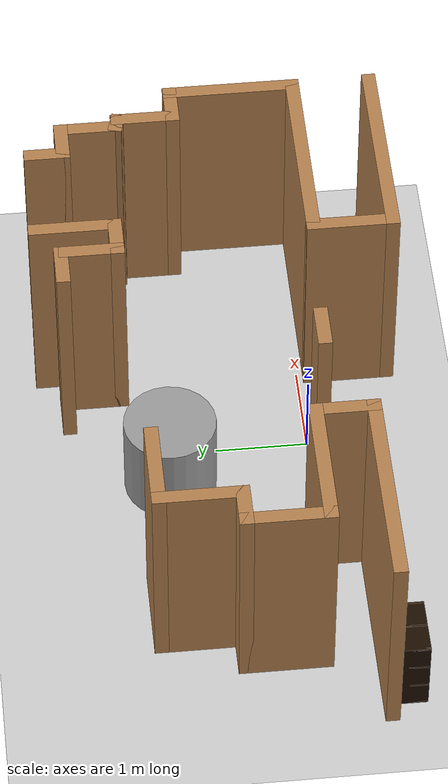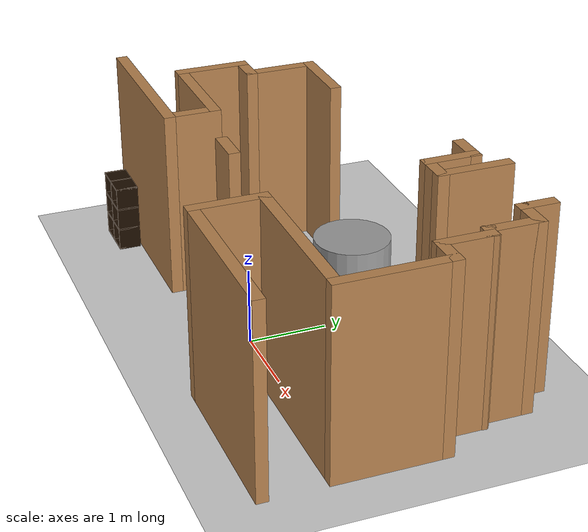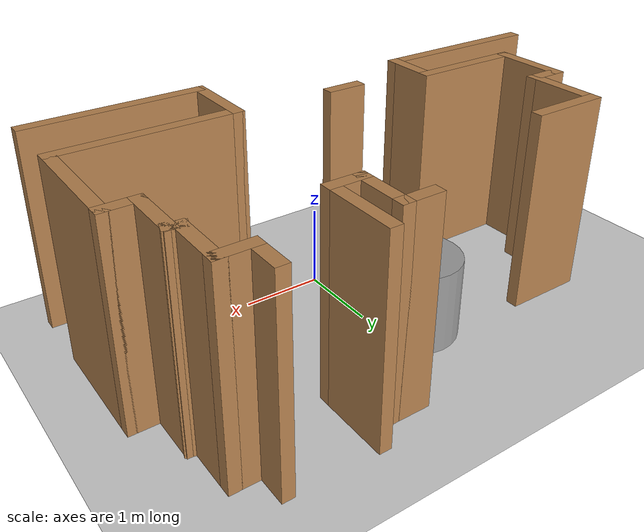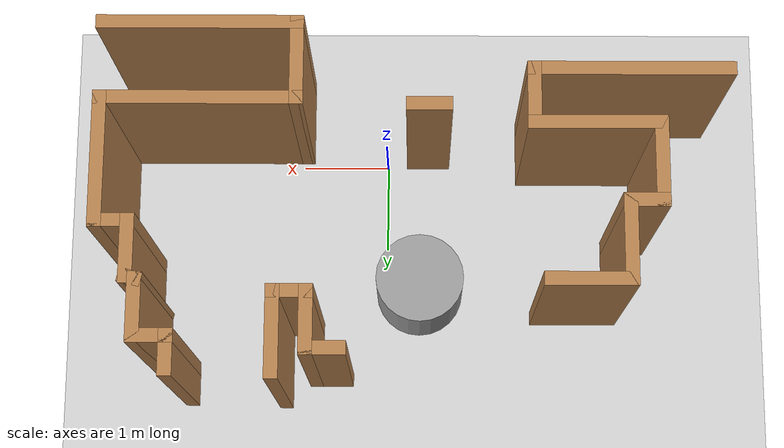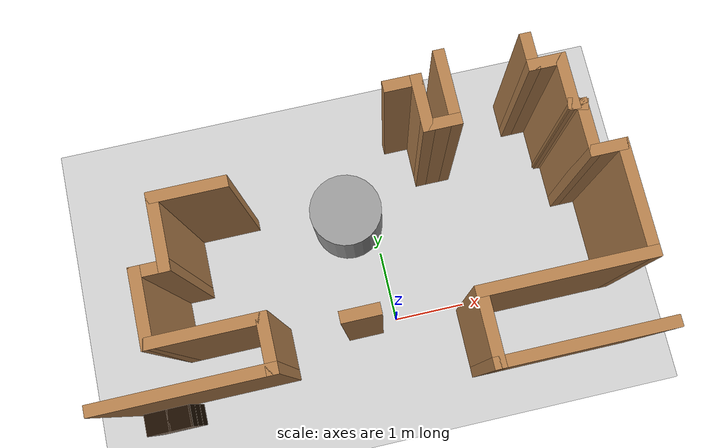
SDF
<sdf version="1.6">
 <world name="default">
  <model name="ground_plane">
   <static>1</static>
   <link name="link">
    <collision name="collision">
     <geometry><plane><normal>0 0 1</normal><size>100 100</size></plane></geometry>
     <surface><friction><ode><mu>100</mu><mu2>50</mu2></ode></friction></surface>
    </collision>
    <visual name="visual">
     <cast_shadows>0</cast_shadows>
     <geometry><plane><normal>0 0 1</normal><size>100 100</size></plane></geometry>
     <material>
      <script><uri>file://media/materials/scripts/gazebo.material</uri><name>Gazebo/Grey</name></script>
     </material>
    </visual>
   </link>
  </model>
  <model name="map_42">
   <link name="Wall_10">
    <pose>-2.325 2.05969 0 0 -0 3.14159</pose>
    <visual name="Wall_10_Visual">
     <pose>0 0 1.25 0 -0 0</pose>
     <geometry><box><size>0.5 0.15 2.5</size></box></geometry>
     <material>
      <script><uri>file://media/materials/scripts/gazebo.material</uri><name>Gazebo/Wood</name></script>
      <ambient>1 1 1 1</ambient>
      <shader type="pixel"/>
     </material>
     <meta><layer>0</layer></meta>
    </visual>
    <collision name="Wall_10_Collision">
     <pose>0 0 1.25 0 -0 0</pose>
     <geometry><box><size>0.5 0.15 2.5</size></box></geometry>
     <surface>
      <friction>
       <ode><mu>1</mu><mu2>1</mu2><fdir1>0 0 0</fdir1><slip1>0</slip1><slip2>0</slip2></ode>
       <torsional>
        <coefficient>1</coefficient>
        <patch_radius>0</patch_radius>
        <surface_radius>0</surface_radius>
        <use_patch_radius>1</use_patch_radius>
        <ode><slip>0</slip></ode>
       </torsional>
      </friction>
      <bounce><restitution_coefficient>0</restitution_coefficient><threshold>1e+06</threshold></bounce>
      <contact>
       <collide_without_contact>0</collide_without_contact>
       <collide_without_contact_bitmask>1</collide_without_contact_bitmask>
       <collide_bitmask>1</collide_bitmask>
       <ode>
        <soft_cfm>0</soft_cfm>
        <soft_erp>0.2</soft_erp>
        <kp>1e+13</kp>
        <kd>1</kd>
        <max_vel>0.01</max_vel>
        <min_depth>0</min_depth>
       </ode>
       <bullet>
        <split_impulse>1</split_impulse>
        <split_impulse_penetration_threshold>-0.01</split_impulse_penetration_threshold>
        <soft_cfm>0</soft_cfm>
        <soft_erp>0.2</soft_erp>
        <kp>1e+13</kp>
        <kd>1</kd>
       </bullet>
      </contact>
     </surface>
    </collision>
   </link>
   <link name="Wall_100">
    <pose>1.26623 3.34952 0 0 -0 1.5708</pose>
    <visual name="Wall_100_Visual">
     <pose>0 0 1.25 0 -0 0</pose>
     <geometry><box><size>0.75 0.15 2.5</size></box></geometry>
     <material>
      <script><uri>file://media/materials/scripts/gazebo.material</uri><name>Gazebo/Wood</name></script>
      <ambient>1 1 1 1</ambient>
      <shader type="pixel"/>
     </material>
     <meta><layer>0</layer></meta>
    </visual>
    <collision name="Wall_100_Collision">
     <pose>0 0 1.25 0 -0 0</pose>
     <geometry><box><size>0.75 0.15 2.5</size></box></geometry>
     <surface>
      <friction>
       <ode><mu>1</mu><mu2>1</mu2><fdir1>0 0 0</fdir1><slip1>0</slip1><slip2>0</slip2></ode>
       <torsional>
        <coefficient>1</coefficient>
        <patch_radius>0</patch_radius>
        <surface_radius>0</surface_radius>
        <use_patch_radius>1</use_patch_radius>
        <ode><slip>0</slip></ode>
       </torsional>
      </friction>
      <bounce><restitution_coefficient>0</restitution_coefficient><threshold>1e+06</threshold></bounce>
      <contact>
       <collide_without_contact>0</collide_without_contact>
       <collide_without_contact_bitmask>1</collide_without_contact_bitmask>
       <collide_bitmask>1</collide_bitmask>
       <ode>
        <soft_cfm>0</soft_cfm>
        <soft_erp>0.2</soft_erp>
        <kp>1e+13</kp>
        <kd>1</kd>
        <max_vel>0.01</max_vel>
        <min_depth>0</min_depth>
       </ode>
       <bullet>
        <split_impulse>1</split_impulse>
        <split_impulse_penetration_threshold>-0.01</split_impulse_penetration_threshold>
        <soft_cfm>0</soft_cfm>
        <soft_erp>0.2</soft_erp>
        <kp>1e+13</kp>
        <kd>1</kd>
       </bullet>
      </contact>
     </surface>
    </collision>
   </link>
   <link name="Wall_101">
    <pose>1.09123 3.64952 0 0 -0 3.14159</pose>
    <visual name="Wall_101_Visual">
     <pose>0 0 1.25 0 -0 0</pose>
     <geometry><box><size>0.5 0.15 2.5</size></box></geometry>
     <material>
      <script><uri>file://media/materials/scripts/gazebo.material</uri><name>Gazebo/Wood</name></script>
      <ambient>1 1 1 1</ambient>
      <shader type="pixel"/>
     </material>
     <meta><layer>0</layer></meta>
    </visual>
    <collision name="Wall_101_Collision">
     <pose>0 0 1.25 0 -0 0</pose>
     <geometry><box><size>0.5 0.15 2.5</size></box></geometry>
     <surface>
      <friction>
       <ode><mu>1</mu><mu2>1</mu2><fdir1>0 0 0</fdir1><slip1>0</slip1><slip2>0</slip2></ode>
       <torsional>
        <coefficient>1</coefficient>
        <patch_radius>0</patch_radius>
        <surface_radius>0</surface_radius>
        <use_patch_radius>1</use_patch_radius>
        <ode><slip>0</slip></ode>
       </torsional>
      </friction>
      <bounce><restitution_coefficient>0</restitution_coefficient><threshold>1e+06</threshold></bounce>
      <contact>
       <collide_without_contact>0</collide_without_contact>
       <collide_without_contact_bitmask>1</collide_without_contact_bitmask>
       <collide_bitmask>1</collide_bitmask>
       <ode>
        <soft_cfm>0</soft_cfm>
        <soft_erp>0.2</soft_erp>
        <kp>1e+13</kp>
        <kd>1</kd>
        <max_vel>0.01</max_vel>
        <min_depth>0</min_depth>
       </ode>
       <bullet>
        <split_impulse>1</split_impulse>
        <split_impulse_penetration_threshold>-0.01</split_impulse_penetration_threshold>
        <soft_cfm>0</soft_cfm>
        <soft_erp>0.2</soft_erp>
        <kp>1e+13</kp>
        <kd>1</kd>
       </bullet>
      </contact>
     </surface>
    </collision>
   </link>
   <link name="Wall_11">
    <pose>-2.5 1.63469 0 0 0 -1.5708</pose>
    <visual name="Wall_11_Visual">
     <pose>0 0 1.25 0 -0 0</pose>
     <geometry><box><size>1 0.15 2.5</size></box></geometry>
     <material>
      <script><uri>file://media/materials/scripts/gazebo.material</uri><name>Gazebo/Wood</name></script>
      <ambient>1 1 1 1</ambient>
      <shader type="pixel"/>
     </material>
     <meta><layer>0</layer></meta>
    </visual>
    <collision name="Wall_11_Collision">
     <pose>0 0 1.25 0 -0 0</pose>
     <geometry><box><size>1 0.15 2.5</size></box></geometry>
     <surface>
      <friction>
       <ode><mu>1</mu><mu2>1</mu2><fdir1>0 0 0</fdir1><slip1>0</slip1><slip2>0</slip2></ode>
       <torsional>
        <coefficient>1</coefficient>
        <patch_radius>0</patch_radius>
        <surface_radius>0</surface_radius>
        <use_patch_radius>1</use_patch_radius>
        <ode><slip>0</slip></ode>
       </torsional>
      </friction>
      <bounce><restitution_coefficient>0</restitution_coefficient><threshold>1e+06</threshold></bounce>
      <contact>
       <collide_without_contact>0</collide_without_contact>
       <collide_without_contact_bitmask>1</collide_without_contact_bitmask>
       <collide_bitmask>1</collide_bitmask>
       <ode>
        <soft_cfm>0</soft_cfm>
        <soft_erp>0.2</soft_erp>
        <kp>1e+13</kp>
        <kd>1</kd>
        <max_vel>0.01</max_vel>
        <min_depth>0</min_depth>
       </ode>
       <bullet>
        <split_impulse>1</split_impulse>
        <split_impulse_penetration_threshold>-0.01</split_impulse_penetration_threshold>
        <soft_cfm>0</soft_cfm>
        <soft_erp>0.2</soft_erp>
        <kp>1e+13</kp>
        <kd>1</kd>
       </bullet>
      </contact>
     </surface>
    </collision>
   </link>
   <link name="Wall_14">
    <pose>-1.825 1.20969 0 0 -0 0</pose>
    <visual name="Wall_14_Visual">
     <pose>0 0 1.25 0 -0 0</pose>
     <geometry><box><size>1.5 0.15 2.5</size></box></geometry>
     <material>
      <script><uri>file://media/materials/scripts/gazebo.material</uri><name>Gazebo/Wood</name></script>
      <ambient>1 1 1 1</ambient>
      <shader type="pixel"/>
     </material>
     <meta><layer>0</layer></meta>
    </visual>
    <collision name="Wall_14_Collision">
     <pose>0 0 1.25 0 -0 0</pose>
     <geometry><box><size>1.5 0.15 2.5</size></box></geometry>
     <surface>
      <friction>
       <ode><mu>1</mu><mu2>1</mu2><fdir1>0 0 0</fdir1><slip1>0</slip1><slip2>0</slip2></ode>
       <torsional>
        <coefficient>1</coefficient>
        <patch_radius>0</patch_radius>
        <surface_radius>0</surface_radius>
        <use_patch_radius>1</use_patch_radius>
        <ode><slip>0</slip></ode>
       </torsional>
      </friction>
      <bounce><restitution_coefficient>0</restitution_coefficient><threshold>1e+06</threshold></bounce>
      <contact>
       <collide_without_contact>0</collide_without_contact>
       <collide_without_contact_bitmask>1</collide_without_contact_bitmask>
       <collide_bitmask>1</collide_bitmask>
       <ode>
        <soft_cfm>0</soft_cfm>
        <soft_erp>0.2</soft_erp>
        <kp>1e+13</kp>
        <kd>1</kd>
        <max_vel>0.01</max_vel>
        <min_depth>0</min_depth>
       </ode>
       <bullet>
        <split_impulse>1</split_impulse>
        <split_impulse_penetration_threshold>-0.01</split_impulse_penetration_threshold>
        <soft_cfm>0</soft_cfm>
        <soft_erp>0.2</soft_erp>
        <kp>1e+13</kp>
        <kd>1</kd>
       </bullet>
      </contact>
     </surface>
    </collision>
   </link>
   <link name="Wall_15">
    <pose>-1.15 0.909687 0 0 0 -1.5708</pose>
    <visual name="Wall_15_Visual">
     <pose>0 0 1.25 0 -0 0</pose>
     <geometry><box><size>0.75 0.15 2.5</size></box></geometry>
     <material>
      <script><uri>file://media/materials/scripts/gazebo.material</uri><name>Gazebo/Wood</name></script>
      <ambient>1 1 1 1</ambient>
      <shader type="pixel"/>
     </material>
     <meta><layer>0</layer></meta>
    </visual>
    <collision name="Wall_15_Collision">
     <pose>0 0 1.25 0 -0 0</pose>
     <geometry><box><size>0.75 0.15 2.5</size></box></geometry>
     <surface>
      <friction>
       <ode><mu>1</mu><mu2>1</mu2><fdir1>0 0 0</fdir1><slip1>0</slip1><slip2>0</slip2></ode>
       <torsional>
        <coefficient>1</coefficient>
        <patch_radius>0</patch_radius>
        <surface_radius>0</surface_radius>
        <use_patch_radius>1</use_patch_radius>
        <ode><slip>0</slip></ode>
       </torsional>
      </friction>
      <bounce><restitution_coefficient>0</restitution_coefficient><threshold>1e+06</threshold></bounce>
      <contact>
       <collide_without_contact>0</collide_without_contact>
       <collide_without_contact_bitmask>1</collide_without_contact_bitmask>
       <collide_bitmask>1</collide_bitmask>
       <ode>
        <soft_cfm>0</soft_cfm>
        <soft_erp>0.2</soft_erp>
        <kp>1e+13</kp>
        <kd>1</kd>
        <max_vel>0.01</max_vel>
        <min_depth>0</min_depth>
       </ode>
       <bullet>
        <split_impulse>1</split_impulse>
        <split_impulse_penetration_threshold>-0.01</split_impulse_penetration_threshold>
        <soft_cfm>0</soft_cfm>
        <soft_erp>0.2</soft_erp>
        <kp>1e+13</kp>
        <kd>1</kd>
       </bullet>
      </contact>
     </surface>
    </collision>
   </link>
   <link name="Wall_16">
    <pose>-2.2 0.609687 0 0 -0 3.14159</pose>
    <visual name="Wall_16_Visual">
     <pose>0 0 1.25 0 -0 0</pose>
     <geometry><box><size>2.25 0.15 2.5</size></box></geometry>
     <material>
      <script><uri>file://media/materials/scripts/gazebo.material</uri><name>Gazebo/Wood</name></script>
      <ambient>1 1 1 1</ambient>
      <shader type="pixel"/>
     </material>
     <meta><layer>0</layer></meta>
    </visual>
    <collision name="Wall_16_Collision">
     <pose>0 0 1.25 0 -0 0</pose>
     <geometry><box><size>2.25 0.15 2.5</size></box></geometry>
     <surface>
      <friction>
       <ode><mu>1</mu><mu2>1</mu2><fdir1>0 0 0</fdir1><slip1>0</slip1><slip2>0</slip2></ode>
       <torsional>
        <coefficient>1</coefficient>
        <patch_radius>0</patch_radius>
        <surface_radius>0</surface_radius>
        <use_patch_radius>1</use_patch_radius>
        <ode><slip>0</slip></ode>
       </torsional>
      </friction>
      <bounce><restitution_coefficient>0</restitution_coefficient><threshold>1e+06</threshold></bounce>
      <contact>
       <collide_without_contact>0</collide_without_contact>
       <collide_without_contact_bitmask>1</collide_without_contact_bitmask>
       <collide_bitmask>1</collide_bitmask>
       <ode>
        <soft_cfm>0</soft_cfm>
        <soft_erp>0.2</soft_erp>
        <kp>1e+13</kp>
        <kd>1</kd>
        <max_vel>0.01</max_vel>
        <min_depth>0</min_depth>
       </ode>
       <bullet>
        <split_impulse>1</split_impulse>
        <split_impulse_penetration_threshold>-0.01</split_impulse_penetration_threshold>
        <soft_cfm>0</soft_cfm>
        <soft_erp>0.2</soft_erp>
        <kp>1e+13</kp>
        <kd>1</kd>
       </bullet>
      </contact>
     </surface>
    </collision>
   </link>
   <link name="Wall_51">
    <pose>-0.025 1.00969 0 0 -0 0</pose>
    <visual name="Wall_51_Visual">
     <pose>0 0 1.25 0 -0 0</pose>
     <geometry><box><size>0.5 0.15 2.5</size></box></geometry>
     <material>
      <script><uri>file://media/materials/scripts/gazebo.material</uri><name>Gazebo/Wood</name></script>
      <ambient>1 1 1 1</ambient>
      <shader type="pixel"/>
     </material>
     <meta><layer>0</layer></meta>
    </visual>
    <collision name="Wall_51_Collision">
     <pose>0 0 1.25 0 -0 0</pose>
     <geometry><box><size>0.5 0.15 2.5</size></box></geometry>
     <surface>
      <friction>
       <ode><mu>1</mu><mu2>1</mu2><fdir1>0 0 0</fdir1><slip1>0</slip1><slip2>0</slip2></ode>
       <torsional>
        <coefficient>1</coefficient>
        <patch_radius>0</patch_radius>
        <surface_radius>0</surface_radius>
        <use_patch_radius>1</use_patch_radius>
        <ode><slip>0</slip></ode>
       </torsional>
      </friction>
      <bounce><restitution_coefficient>0</restitution_coefficient><threshold>1e+06</threshold></bounce>
      <contact>
       <collide_without_contact>0</collide_without_contact>
       <collide_without_contact_bitmask>1</collide_without_contact_bitmask>
       <collide_bitmask>1</collide_bitmask>
       <ode>
        <soft_cfm>0</soft_cfm>
        <soft_erp>0.2</soft_erp>
        <kp>1e+13</kp>
        <kd>1</kd>
        <max_vel>0.01</max_vel>
        <min_depth>0</min_depth>
       </ode>
       <bullet>
        <split_impulse>1</split_impulse>
        <split_impulse_penetration_threshold>-0.01</split_impulse_penetration_threshold>
        <soft_cfm>0</soft_cfm>
        <soft_erp>0.2</soft_erp>
        <kp>1e+13</kp>
        <kd>1</kd>
       </bullet>
      </contact>
     </surface>
    </collision>
   </link>
   <link name="Wall_79">
    <pose>2.45941 0.097761 0 0 -0 3.14159</pose>
    <visual name="Wall_79_Visual">
     <pose>0 0 1.25 0 -0 0</pose>
     <geometry><box><size>2.25 0.15 2.5</size></box></geometry>
     <material>
      <script><uri>file://media/materials/scripts/gazebo.material</uri><name>Gazebo/Wood</name></script>
      <ambient>1 1 1 1</ambient>
      <shader type="pixel"/>
     </material>
     <meta><layer>0</layer></meta>
    </visual>
    <collision name="Wall_79_Collision">
     <pose>0 0 1.25 0 -0 0</pose>
     <geometry><box><size>2.25 0.15 2.5</size></box></geometry>
     <surface>
      <friction>
       <ode><mu>1</mu><mu2>1</mu2><fdir1>0 0 0</fdir1><slip1>0</slip1><slip2>0</slip2></ode>
       <torsional>
        <coefficient>1</coefficient>
        <patch_radius>0</patch_radius>
        <surface_radius>0</surface_radius>
        <use_patch_radius>1</use_patch_radius>
        <ode><slip>0</slip></ode>
       </torsional>
      </friction>
      <bounce><restitution_coefficient>0</restitution_coefficient><threshold>1e+06</threshold></bounce>
      <contact>
       <collide_without_contact>0</collide_without_contact>
       <collide_without_contact_bitmask>1</collide_without_contact_bitmask>
       <collide_bitmask>1</collide_bitmask>
       <ode>
        <soft_cfm>0</soft_cfm>
        <soft_erp>0.2</soft_erp>
        <kp>1e+13</kp>
        <kd>1</kd>
        <max_vel>0.01</max_vel>
        <min_depth>0</min_depth>
       </ode>
       <bullet>
        <split_impulse>1</split_impulse>
        <split_impulse_penetration_threshold>-0.01</split_impulse_penetration_threshold>
        <soft_cfm>0</soft_cfm>
        <soft_erp>0.2</soft_erp>
        <kp>1e+13</kp>
        <kd>1</kd>
       </bullet>
      </contact>
     </surface>
    </collision>
   </link>
   <link name="Wall_8">
    <pose>-1.725 2.90969 0 0 -0 3.14159</pose>
    <visual name="Wall_8_Visual">
     <pose>0 0 1.25 0 -0 0</pose>
     <geometry><box><size>1 0.15 2.5</size></box></geometry>
     <material>
      <script><uri>file://media/materials/scripts/gazebo.material</uri><name>Gazebo/Wood</name></script>
      <ambient>1 1 1 1</ambient>
      <shader type="pixel"/>
     </material>
     <meta><layer>0</layer></meta>
    </visual>
    <collision name="Wall_8_Collision">
     <pose>0 0 1.25 0 -0 0</pose>
     <geometry><box><size>1 0.15 2.5</size></box></geometry>
     <surface>
      <friction>
       <ode><mu>1</mu><mu2>1</mu2><fdir1>0 0 0</fdir1><slip1>0</slip1><slip2>0</slip2></ode>
       <torsional>
        <coefficient>1</coefficient>
        <patch_radius>0</patch_radius>
        <surface_radius>0</surface_radius>
        <use_patch_radius>1</use_patch_radius>
        <ode><slip>0</slip></ode>
       </torsional>
      </friction>
      <bounce><restitution_coefficient>0</restitution_coefficient><threshold>1e+06</threshold></bounce>
      <contact>
       <collide_without_contact>0</collide_without_contact>
       <collide_without_contact_bitmask>1</collide_without_contact_bitmask>
       <collide_bitmask>1</collide_bitmask>
       <ode>
        <soft_cfm>0</soft_cfm>
        <soft_erp>0.2</soft_erp>
        <kp>1e+13</kp>
        <kd>1</kd>
        <max_vel>0.01</max_vel>
        <min_depth>0</min_depth>
       </ode>
       <bullet>
        <split_impulse>1</split_impulse>
        <split_impulse_penetration_threshold>-0.01</split_impulse_penetration_threshold>
        <soft_cfm>0</soft_cfm>
        <soft_erp>0.2</soft_erp>
        <kp>1e+13</kp>
        <kd>1</kd>
       </bullet>
      </contact>
     </surface>
    </collision>
   </link>
   <link name="Wall_80">
    <pose>1.40941 0.522761 0 0 -0 1.5708</pose>
    <visual name="Wall_80_Visual">
     <pose>0 0 1.25 0 -0 0</pose>
     <geometry><box><size>1 0.15 2.5</size></box></geometry>
     <material>
      <script><uri>file://media/materials/scripts/gazebo.material</uri><name>Gazebo/Wood</name></script>
      <ambient>1 1 1 1</ambient>
      <shader type="pixel"/>
     </material>
     <meta><layer>0</layer></meta>
    </visual>
    <collision name="Wall_80_Collision">
     <pose>0 0 1.25 0 -0 0</pose>
     <geometry><box><size>1 0.15 2.5</size></box></geometry>
     <surface>
      <friction>
       <ode><mu>1</mu><mu2>1</mu2><fdir1>0 0 0</fdir1><slip1>0</slip1><slip2>0</slip2></ode>
       <torsional>
        <coefficient>1</coefficient>
        <patch_radius>0</patch_radius>
        <surface_radius>0</surface_radius>
        <use_patch_radius>1</use_patch_radius>
        <ode><slip>0</slip></ode>
       </torsional>
      </friction>
      <bounce><restitution_coefficient>0</restitution_coefficient><threshold>1e+06</threshold></bounce>
      <contact>
       <collide_without_contact>0</collide_without_contact>
       <collide_without_contact_bitmask>1</collide_without_contact_bitmask>
       <collide_bitmask>1</collide_bitmask>
       <ode>
        <soft_cfm>0</soft_cfm>
        <soft_erp>0.2</soft_erp>
        <kp>1e+13</kp>
        <kd>1</kd>
        <max_vel>0.01</max_vel>
        <min_depth>0</min_depth>
       </ode>
       <bullet>
        <split_impulse>1</split_impulse>
        <split_impulse_penetration_threshold>-0.01</split_impulse_penetration_threshold>
        <soft_cfm>0</soft_cfm>
        <soft_erp>0.2</soft_erp>
        <kp>1e+13</kp>
        <kd>1</kd>
       </bullet>
      </contact>
     </surface>
    </collision>
   </link>
   <link name="Wall_81">
    <pose>2.45941 0.947761 0 0 -0 0</pose>
    <visual name="Wall_81_Visual">
     <pose>0 0 1.25 0 -0 0</pose>
     <geometry><box><size>2.25 0.15 2.5</size></box></geometry>
     <material>
      <script><uri>file://media/materials/scripts/gazebo.material</uri><name>Gazebo/Wood</name></script>
      <ambient>1 1 1 1</ambient>
      <shader type="pixel"/>
     </material>
     <meta><layer>0</layer></meta>
    </visual>
    <collision name="Wall_81_Collision">
     <pose>0 0 1.25 0 -0 0</pose>
     <geometry><box><size>2.25 0.15 2.5</size></box></geometry>
     <surface>
      <friction>
       <ode><mu>1</mu><mu2>1</mu2><fdir1>0 0 0</fdir1><slip1>0</slip1><slip2>0</slip2></ode>
       <torsional>
        <coefficient>1</coefficient>
        <patch_radius>0</patch_radius>
        <surface_radius>0</surface_radius>
        <use_patch_radius>1</use_patch_radius>
        <ode><slip>0</slip></ode>
       </torsional>
      </friction>
      <bounce><restitution_coefficient>0</restitution_coefficient><threshold>1e+06</threshold></bounce>
      <contact>
       <collide_without_contact>0</collide_without_contact>
       <collide_without_contact_bitmask>1</collide_without_contact_bitmask>
       <collide_bitmask>1</collide_bitmask>
       <ode>
        <soft_cfm>0</soft_cfm>
        <soft_erp>0.2</soft_erp>
        <kp>1e+13</kp>
        <kd>1</kd>
        <max_vel>0.01</max_vel>
        <min_depth>0</min_depth>
       </ode>
       <bullet>
        <split_impulse>1</split_impulse>
        <split_impulse_penetration_threshold>-0.01</split_impulse_penetration_threshold>
        <soft_cfm>0</soft_cfm>
        <soft_erp>0.2</soft_erp>
        <kp>1e+13</kp>
        <kd>1</kd>
       </bullet>
      </contact>
     </surface>
    </collision>
   </link>
   <link name="Wall_82">
    <pose>3.50941 1.62276 0 0 -0 1.5708</pose>
    <visual name="Wall_82_Visual">
     <pose>0 0 1.25 0 -0 0</pose>
     <geometry><box><size>1.5 0.15 2.5</size></box></geometry>
     <material>
      <script><uri>file://media/materials/scripts/gazebo.material</uri><name>Gazebo/Wood</name></script>
      <ambient>1 1 1 1</ambient>
      <shader type="pixel"/>
     </material>
     <meta><layer>0</layer></meta>
    </visual>
    <collision name="Wall_82_Collision">
     <pose>0 0 1.25 0 -0 0</pose>
     <geometry><box><size>1.5 0.15 2.5</size></box></geometry>
     <surface>
      <friction>
       <ode><mu>1</mu><mu2>1</mu2><fdir1>0 0 0</fdir1><slip1>0</slip1><slip2>0</slip2></ode>
       <torsional>
        <coefficient>1</coefficient>
        <patch_radius>0</patch_radius>
        <surface_radius>0</surface_radius>
        <use_patch_radius>1</use_patch_radius>
        <ode><slip>0</slip></ode>
       </torsional>
      </friction>
      <bounce><restitution_coefficient>0</restitution_coefficient><threshold>1e+06</threshold></bounce>
      <contact>
       <collide_without_contact>0</collide_without_contact>
       <collide_without_contact_bitmask>1</collide_without_contact_bitmask>
       <collide_bitmask>1</collide_bitmask>
       <ode>
        <soft_cfm>0</soft_cfm>
        <soft_erp>0.2</soft_erp>
        <kp>1e+13</kp>
        <kd>1</kd>
        <max_vel>0.01</max_vel>
        <min_depth>0</min_depth>
       </ode>
       <bullet>
        <split_impulse>1</split_impulse>
        <split_impulse_penetration_threshold>-0.01</split_impulse_penetration_threshold>
        <soft_cfm>0</soft_cfm>
        <soft_erp>0.2</soft_erp>
        <kp>1e+13</kp>
        <kd>1</kd>
       </bullet>
      </contact>
     </surface>
    </collision>
   </link>
   <link name="Wall_83">
    <pose>3.33441 2.29776 0 0 -0 3.14159</pose>
    <visual name="Wall_83_Visual">
     <pose>0 0 1.25 0 -0 0</pose>
     <geometry><box><size>0.5 0.15 2.5</size></box></geometry>
     <material>
      <script><uri>file://media/materials/scripts/gazebo.material</uri><name>Gazebo/Wood</name></script>
      <ambient>1 1 1 1</ambient>
      <shader type="pixel"/>
     </material>
     <meta><layer>0</layer></meta>
    </visual>
    <collision name="Wall_83_Collision">
     <pose>0 0 1.25 0 -0 0</pose>
     <geometry><box><size>0.5 0.15 2.5</size></box></geometry>
     <surface>
      <friction>
       <ode><mu>1</mu><mu2>1</mu2><fdir1>0 0 0</fdir1><slip1>0</slip1><slip2>0</slip2></ode>
       <torsional>
        <coefficient>1</coefficient>
        <patch_radius>0</patch_radius>
        <surface_radius>0</surface_radius>
        <use_patch_radius>1</use_patch_radius>
        <ode><slip>0</slip></ode>
       </torsional>
      </friction>
      <bounce><restitution_coefficient>0</restitution_coefficient><threshold>1e+06</threshold></bounce>
      <contact>
       <collide_without_contact>0</collide_without_contact>
       <collide_without_contact_bitmask>1</collide_without_contact_bitmask>
       <collide_bitmask>1</collide_bitmask>
       <ode>
        <soft_cfm>0</soft_cfm>
        <soft_erp>0.2</soft_erp>
        <kp>1e+13</kp>
        <kd>1</kd>
        <max_vel>0.01</max_vel>
        <min_depth>0</min_depth>
       </ode>
       <bullet>
        <split_impulse>1</split_impulse>
        <split_impulse_penetration_threshold>-0.01</split_impulse_penetration_threshold>
        <soft_cfm>0</soft_cfm>
        <soft_erp>0.2</soft_erp>
        <kp>1e+13</kp>
        <kd>1</kd>
       </bullet>
      </contact>
     </surface>
    </collision>
   </link>
   <link name="Wall_84">
    <pose>3.15941 2.59776 0 0 -0 1.5708</pose>
    <visual name="Wall_84_Visual">
     <pose>0 0 1.25 0 -0 0</pose>
     <geometry><box><size>0.75 0.15 2.5</size></box></geometry>
     <material>
      <script><uri>file://media/materials/scripts/gazebo.material</uri><name>Gazebo/Wood</name></script>
      <ambient>1 1 1 1</ambient>
      <shader type="pixel"/>
     </material>
     <meta><layer>0</layer></meta>
    </visual>
    <collision name="Wall_84_Collision">
     <pose>0 0 1.25 0 -0 0</pose>
     <geometry><box><size>0.75 0.15 2.5</size></box></geometry>
     <surface>
      <friction>
       <ode><mu>1</mu><mu2>1</mu2><fdir1>0 0 0</fdir1><slip1>0</slip1><slip2>0</slip2></ode>
       <torsional>
        <coefficient>1</coefficient>
        <patch_radius>0</patch_radius>
        <surface_radius>0</surface_radius>
        <use_patch_radius>1</use_patch_radius>
        <ode><slip>0</slip></ode>
       </torsional>
      </friction>
      <bounce><restitution_coefficient>0</restitution_coefficient><threshold>1e+06</threshold></bounce>
      <contact>
       <collide_without_contact>0</collide_without_contact>
       <collide_without_contact_bitmask>1</collide_without_contact_bitmask>
       <collide_bitmask>1</collide_bitmask>
       <ode>
        <soft_cfm>0</soft_cfm>
        <soft_erp>0.2</soft_erp>
        <kp>1e+13</kp>
        <kd>1</kd>
        <max_vel>0.01</max_vel>
        <min_depth>0</min_depth>
       </ode>
       <bullet>
        <split_impulse>1</split_impulse>
        <split_impulse_penetration_threshold>-0.01</split_impulse_penetration_threshold>
        <soft_cfm>0</soft_cfm>
        <soft_erp>0.2</soft_erp>
        <kp>1e+13</kp>
        <kd>1</kd>
       </bullet>
      </contact>
     </surface>
    </collision>
   </link>
   <link name="Wall_85">
    <pose>3.11112 2.9107 0 0 -0 2.87979</pose>
    <visual name="Wall_85_Visual">
     <pose>0 0 1.25 0 -0 0</pose>
     <geometry><box><size>0.25 0.15 2.5</size></box></geometry>
     <material>
      <script><uri>file://media/materials/scripts/gazebo.material</uri><name>Gazebo/Wood</name></script>
      <ambient>1 1 1 1</ambient>
      <shader type="pixel"/>
     </material>
     <meta><layer>0</layer></meta>
    </visual>
    <collision name="Wall_85_Collision">
     <pose>0 0 1.25 0 -0 0</pose>
     <geometry><box><size>0.25 0.15 2.5</size></box></geometry>
     <surface>
      <friction>
       <ode><mu>1</mu><mu2>1</mu2><fdir1>0 0 0</fdir1><slip1>0</slip1><slip2>0</slip2></ode>
       <torsional>
        <coefficient>1</coefficient>
        <patch_radius>0</patch_radius>
        <surface_radius>0</surface_radius>
        <use_patch_radius>1</use_patch_radius>
        <ode><slip>0</slip></ode>
       </torsional>
      </friction>
      <bounce><restitution_coefficient>0</restitution_coefficient><threshold>1e+06</threshold></bounce>
      <contact>
       <collide_without_contact>0</collide_without_contact>
       <collide_without_contact_bitmask>1</collide_without_contact_bitmask>
       <collide_bitmask>1</collide_bitmask>
       <ode>
        <soft_cfm>0</soft_cfm>
        <soft_erp>0.2</soft_erp>
        <kp>1e+13</kp>
        <kd>1</kd>
        <max_vel>0.01</max_vel>
        <min_depth>0</min_depth>
       </ode>
       <bullet>
        <split_impulse>1</split_impulse>
        <split_impulse_penetration_threshold>-0.01</split_impulse_penetration_threshold>
        <soft_cfm>0</soft_cfm>
        <soft_erp>0.2</soft_erp>
        <kp>1e+13</kp>
        <kd>1</kd>
       </bullet>
      </contact>
     </surface>
    </collision>
   </link>
   <link name="Wall_86">
    <pose>3.06282 3.22364 0 0 -0 1.5708</pose>
    <visual name="Wall_86_Visual">
     <pose>0 0 1.25 0 -0 0</pose>
     <geometry><box><size>0.75 0.15 2.5</size></box></geometry>
     <material>
      <script><uri>file://media/materials/scripts/gazebo.material</uri><name>Gazebo/Wood</name></script>
      <ambient>1 1 1 1</ambient>
      <shader type="pixel"/>
     </material>
     <meta><layer>0</layer></meta>
    </visual>
    <collision name="Wall_86_Collision">
     <pose>0 0 1.25 0 -0 0</pose>
     <geometry><box><size>0.75 0.15 2.5</size></box></geometry>
     <surface>
      <friction>
       <ode><mu>1</mu><mu2>1</mu2><fdir1>0 0 0</fdir1><slip1>0</slip1><slip2>0</slip2></ode>
       <torsional>
        <coefficient>1</coefficient>
        <patch_radius>0</patch_radius>
        <surface_radius>0</surface_radius>
        <use_patch_radius>1</use_patch_radius>
        <ode><slip>0</slip></ode>
       </torsional>
      </friction>
      <bounce><restitution_coefficient>0</restitution_coefficient><threshold>1e+06</threshold></bounce>
      <contact>
       <collide_without_contact>0</collide_without_contact>
       <collide_without_contact_bitmask>1</collide_without_contact_bitmask>
       <collide_bitmask>1</collide_bitmask>
       <ode>
        <soft_cfm>0</soft_cfm>
        <soft_erp>0.2</soft_erp>
        <kp>1e+13</kp>
        <kd>1</kd>
        <max_vel>0.01</max_vel>
        <min_depth>0</min_depth>
       </ode>
       <bullet>
        <split_impulse>1</split_impulse>
        <split_impulse_penetration_threshold>-0.01</split_impulse_penetration_threshold>
        <soft_cfm>0</soft_cfm>
        <soft_erp>0.2</soft_erp>
        <kp>1e+13</kp>
        <kd>1</kd>
       </bullet>
      </contact>
     </surface>
    </collision>
   </link>
   <link name="Wall_89">
    <pose>2.88782 3.52364 0 0 -0 3.14159</pose>
    <visual name="Wall_89_Visual">
     <pose>0 0 1.25 0 -0 0</pose>
     <geometry><box><size>0.5 0.15 2.5</size></box></geometry>
     <material>
      <script><uri>file://media/materials/scripts/gazebo.material</uri><name>Gazebo/Wood</name></script>
      <ambient>1 1 1 1</ambient>
      <shader type="pixel"/>
     </material>
     <meta><layer>0</layer></meta>
    </visual>
    <collision name="Wall_89_Collision">
     <pose>0 0 1.25 0 -0 0</pose>
     <geometry><box><size>0.5 0.15 2.5</size></box></geometry>
     <surface>
      <friction>
       <ode><mu>1</mu><mu2>1</mu2><fdir1>0 0 0</fdir1><slip1>0</slip1><slip2>0</slip2></ode>
       <torsional>
        <coefficient>1</coefficient>
        <patch_radius>0</patch_radius>
        <surface_radius>0</surface_radius>
        <use_patch_radius>1</use_patch_radius>
        <ode><slip>0</slip></ode>
       </torsional>
      </friction>
      <bounce><restitution_coefficient>0</restitution_coefficient><threshold>1e+06</threshold></bounce>
      <contact>
       <collide_without_contact>0</collide_without_contact>
       <collide_without_contact_bitmask>1</collide_without_contact_bitmask>
       <collide_bitmask>1</collide_bitmask>
       <ode>
        <soft_cfm>0</soft_cfm>
        <soft_erp>0.2</soft_erp>
        <kp>1e+13</kp>
        <kd>1</kd>
        <max_vel>0.01</max_vel>
        <min_depth>0</min_depth>
       </ode>
       <bullet>
        <split_impulse>1</split_impulse>
        <split_impulse_penetration_threshold>-0.01</split_impulse_penetration_threshold>
        <soft_cfm>0</soft_cfm>
        <soft_erp>0.2</soft_erp>
        <kp>1e+13</kp>
        <kd>1</kd>
       </bullet>
      </contact>
     </surface>
    </collision>
   </link>
   <link name="Wall_9">
    <pose>-2.15 2.48469 0 0 0 -1.5708</pose>
    <visual name="Wall_9_Visual">
     <pose>0 0 1.25 0 -0 0</pose>
     <geometry><box><size>1 0.15 2.5</size></box></geometry>
     <material>
      <script><uri>file://media/materials/scripts/gazebo.material</uri><name>Gazebo/Wood</name></script>
      <ambient>1 1 1 1</ambient>
      <shader type="pixel"/>
     </material>
     <meta><layer>0</layer></meta>
    </visual>
    <collision name="Wall_9_Collision">
     <pose>0 0 1.25 0 -0 0</pose>
     <geometry><box><size>1 0.15 2.5</size></box></geometry>
     <surface>
      <friction>
       <ode><mu>1</mu><mu2>1</mu2><fdir1>0 0 0</fdir1><slip1>0</slip1><slip2>0</slip2></ode>
       <torsional>
        <coefficient>1</coefficient>
        <patch_radius>0</patch_radius>
        <surface_radius>0</surface_radius>
        <use_patch_radius>1</use_patch_radius>
        <ode><slip>0</slip></ode>
       </torsional>
      </friction>
      <bounce><restitution_coefficient>0</restitution_coefficient><threshold>1e+06</threshold></bounce>
      <contact>
       <collide_without_contact>0</collide_without_contact>
       <collide_without_contact_bitmask>1</collide_without_contact_bitmask>
       <collide_bitmask>1</collide_bitmask>
       <ode>
        <soft_cfm>0</soft_cfm>
        <soft_erp>0.2</soft_erp>
        <kp>1e+13</kp>
        <kd>1</kd>
        <max_vel>0.01</max_vel>
        <min_depth>0</min_depth>
       </ode>
       <bullet>
        <split_impulse>1</split_impulse>
        <split_impulse_penetration_threshold>-0.01</split_impulse_penetration_threshold>
        <soft_cfm>0</soft_cfm>
        <soft_erp>0.2</soft_erp>
        <kp>1e+13</kp>
        <kd>1</kd>
       </bullet>
      </contact>
     </surface>
    </collision>
   </link>
   <link name="Wall_90">
    <pose>2.71282 3.69864 0 0 -0 1.5708</pose>
    <visual name="Wall_90_Visual">
     <pose>0 0 1.25 0 -0 0</pose>
     <geometry><box><size>0.5 0.15 2.5</size></box></geometry>
     <material>
      <script><uri>file://media/materials/scripts/gazebo.material</uri><name>Gazebo/Wood</name></script>
      <ambient>1 1 1 1</ambient>
      <shader type="pixel"/>
     </material>
     <meta><layer>0</layer></meta>
    </visual>
    <collision name="Wall_90_Collision">
     <pose>0 0 1.25 0 -0 0</pose>
     <geometry><box><size>0.5 0.15 2.5</size></box></geometry>
     <surface>
      <friction>
       <ode><mu>1</mu><mu2>1</mu2><fdir1>0 0 0</fdir1><slip1>0</slip1><slip2>0</slip2></ode>
       <torsional>
        <coefficient>1</coefficient>
        <patch_radius>0</patch_radius>
        <surface_radius>0</surface_radius>
        <use_patch_radius>1</use_patch_radius>
        <ode><slip>0</slip></ode>
       </torsional>
      </friction>
      <bounce><restitution_coefficient>0</restitution_coefficient><threshold>1e+06</threshold></bounce>
      <contact>
       <collide_without_contact>0</collide_without_contact>
       <collide_without_contact_bitmask>1</collide_without_contact_bitmask>
       <collide_bitmask>1</collide_bitmask>
       <ode>
        <soft_cfm>0</soft_cfm>
        <soft_erp>0.2</soft_erp>
        <kp>1e+13</kp>
        <kd>1</kd>
        <max_vel>0.01</max_vel>
        <min_depth>0</min_depth>
       </ode>
       <bullet>
        <split_impulse>1</split_impulse>
        <split_impulse_penetration_threshold>-0.01</split_impulse_penetration_threshold>
        <soft_cfm>0</soft_cfm>
        <soft_erp>0.2</soft_erp>
        <kp>1e+13</kp>
        <kd>1</kd>
       </bullet>
      </contact>
     </surface>
    </collision>
   </link>
   <link name="Wall_98">
    <pose>1.61623 3.47452 0 0 0 -1.5708</pose>
    <visual name="Wall_98_Visual">
     <pose>0 0 1.25 0 -0 0</pose>
     <geometry><box><size>1 0.15 2.5</size></box></geometry>
     <material>
      <script><uri>file://media/materials/scripts/gazebo.material</uri><name>Gazebo/Wood</name></script>
      <ambient>1 1 1 1</ambient>
      <shader type="pixel"/>
     </material>
     <meta><layer>0</layer></meta>
    </visual>
    <collision name="Wall_98_Collision">
     <pose>0 0 1.25 0 -0 0</pose>
     <geometry><box><size>1 0.15 2.5</size></box></geometry>
     <surface>
      <friction>
       <ode><mu>1</mu><mu2>1</mu2><fdir1>0 0 0</fdir1><slip1>0</slip1><slip2>0</slip2></ode>
       <torsional>
        <coefficient>1</coefficient>
        <patch_radius>0</patch_radius>
        <surface_radius>0</surface_radius>
        <use_patch_radius>1</use_patch_radius>
        <ode><slip>0</slip></ode>
       </torsional>
      </friction>
      <bounce><restitution_coefficient>0</restitution_coefficient><threshold>1e+06</threshold></bounce>
      <contact>
       <collide_without_contact>0</collide_without_contact>
       <collide_without_contact_bitmask>1</collide_without_contact_bitmask>
       <collide_bitmask>1</collide_bitmask>
       <ode>
        <soft_cfm>0</soft_cfm>
        <soft_erp>0.2</soft_erp>
        <kp>1e+13</kp>
        <kd>1</kd>
        <max_vel>0.01</max_vel>
        <min_depth>0</min_depth>
       </ode>
       <bullet>
        <split_impulse>1</split_impulse>
        <split_impulse_penetration_threshold>-0.01</split_impulse_penetration_threshold>
        <soft_cfm>0</soft_cfm>
        <soft_erp>0.2</soft_erp>
        <kp>1e+13</kp>
        <kd>1</kd>
       </bullet>
      </contact>
     </surface>
    </collision>
   </link>
   <link name="Wall_99">
    <pose>1.44123 3.04953 0 0 -0 3.14159</pose>
    <visual name="Wall_99_Visual">
     <pose>0 0 1.25 0 -0 0</pose>
     <geometry><box><size>0.5 0.15 2.5</size></box></geometry>
     <material>
      <script><uri>file://media/materials/scripts/gazebo.material</uri><name>Gazebo/Wood</name></script>
      <ambient>1 1 1 1</ambient>
      <shader type="pixel"/>
     </material>
     <meta><layer>0</layer></meta>
    </visual>
    <collision name="Wall_99_Collision">
     <pose>0 0 1.25 0 -0 0</pose>
     <geometry><box><size>0.5 0.15 2.5</size></box></geometry>
     <surface>
      <friction>
       <ode><mu>1</mu><mu2>1</mu2><fdir1>0 0 0</fdir1><slip1>0</slip1><slip2>0</slip2></ode>
       <torsional>
        <coefficient>1</coefficient>
        <patch_radius>0</patch_radius>
        <surface_radius>0</surface_radius>
        <use_patch_radius>1</use_patch_radius>
        <ode><slip>0</slip></ode>
       </torsional>
      </friction>
      <bounce><restitution_coefficient>0</restitution_coefficient><threshold>1e+06</threshold></bounce>
      <contact>
       <collide_without_contact>0</collide_without_contact>
       <collide_without_contact_bitmask>1</collide_without_contact_bitmask>
       <collide_bitmask>1</collide_bitmask>
       <ode>
        <soft_cfm>0</soft_cfm>
        <soft_erp>0.2</soft_erp>
        <kp>1e+13</kp>
        <kd>1</kd>
        <max_vel>0.01</max_vel>
        <min_depth>0</min_depth>
       </ode>
       <bullet>
        <split_impulse>1</split_impulse>
        <split_impulse_penetration_threshold>-0.01</split_impulse_penetration_threshold>
        <soft_cfm>0</soft_cfm>
        <soft_erp>0.2</soft_erp>
        <kp>1e+13</kp>
        <kd>1</kd>
       </bullet>
      </contact>
     </surface>
    </collision>
   </link>
   <static>1</static>
   <pose>-0.44967 -1.08542 0 0 -0 0</pose>
  </model>
  <model name="unit_cylinder">
   <pose>-0.375349 1.52765 0.5 0 -0 0</pose>
   <link name="link">
    <inertial>
     <mass>1</mass>
     <inertia><ixx>0.145833</ixx><ixy>0</ixy><ixz>0</ixz><iyy>0.145833</iyy><iyz>0</iyz><izz>0.125</izz></inertia>
    </inertial>
    <collision name="collision">
     <geometry><cylinder><radius>0.5</radius><length>1</length></cylinder></geometry>
    </collision>
    <visual name="visual">
     <geometry><cylinder><radius>0.5</radius><length>1</length></cylinder></geometry>
     <material>
      <script><name>Gazebo/Grey</name><uri>file://media/materials/scripts/gazebo.material</uri></script>
     </material>
    </visual>
   </link>
  </model>
  <model name="6_Cube_StorageE_1">
   <link name="Wall_0">
    <pose>0 0 0.01 0 -0 0</pose>
    <inertial>
     <mass>1.6201</mass>
     <inertia><ixx>0.0119</ixx><iyy>0.0631</iyy><izz>0.0513</izz><ixy>0</ixy><ixz>0</ixz><iyz>0</iyz></inertia>
    </inertial>
    <collision name="Wall_0_Collision"><geometry><box><size>0.616 0.296 0.02</size></box></geometry></collision>
    <visual name="Wall_0_Visual">
     <geometry><box><size>0.616 0.296 0.02</size></box></geometry>
     <material>
      <script><uri>file://media/materials/scripts/gazebo.material</uri><name>Gazebo/Grey</name></script>
      <ambient>0.105882 0.0509804 0 1</ambient>
     </material>
    </visual>
   </link>
   <joint name="0_2" type="fixed">
    <pose>-0.308 0 0 0 -0 0</pose>
    <parent>Wall_2</parent>
    <child>Wall_0</child>
    <axis>
     <xyz>1 0 0</xyz>
     <use_parent_model_frame>0</use_parent_model_frame>
     <limit><lower>-1e+16</lower><upper>1e+16</upper></limit>
    </axis>
   </joint>
   <joint name="0_12" type="fixed">
    <parent>Wall_12</parent>
    <child>Wall_0</child>
    <axis>
     <xyz>0 0 1</xyz>
     <use_parent_model_frame>0</use_parent_model_frame>
     <limit><lower>-1e+16</lower><upper>1e+16</upper></limit>
    </axis>
   </joint>
   <joint name="0_4" type="fixed">
    <pose>0.308 0 0 0 -0 0</pose>
    <parent>Wall_4</parent>
    <child>Wall_0</child>
    <axis>
     <xyz>1 0 0</xyz>
     <use_parent_model_frame>0</use_parent_model_frame>
     <limit><lower>-1e+16</lower><upper>1e+16</upper></limit>
    </axis>
   </joint>
   <link name="Wall_10">
    <pose>0 0 0.61 0 -0 0</pose>
    <inertial>
     <mass>1.6201</mass>
     <inertia><ixx>0.0119</ixx><iyy>0.0631</iyy><izz>0.0513</izz><ixy>0</ixy><ixz>0</ixz><iyz>0</iyz></inertia>
    </inertial>
    <collision name="Wall_10_Collision"><geometry><box><size>0.616 0.296 0.02</size></box></geometry></collision>
    <visual name="Wall_10_Visual">
     <geometry><box><size>0.616 0.296 0.02</size></box></geometry>
     <material>
      <script><uri>file://media/materials/scripts/gazebo.material</uri><name>Gazebo/Grey</name></script>
      <ambient>0.105882 0.0509804 0 1</ambient>
     </material>
    </visual>
   </link>
   <joint name="10_2" type="fixed">
    <pose>-0.308 0 0 0 -0 0</pose>
    <parent>Wall_2</parent>
    <child>Wall_10</child>
    <axis>
     <xyz>1 0 0</xyz>
     <use_parent_model_frame>0</use_parent_model_frame>
     <limit><lower>-1e+16</lower><upper>1e+16</upper></limit>
    </axis>
   </joint>
   <joint name="10_12" type="fixed">
    <parent>Wall_12</parent>
    <child>Wall_10</child>
    <axis>
     <xyz>0 0 1</xyz>
     <use_parent_model_frame>0</use_parent_model_frame>
     <limit><lower>-1e+16</lower><upper>1e+16</upper></limit>
    </axis>
   </joint>
   <joint name="10_4" type="fixed">
    <pose>0.308 0 0 0 -0 0</pose>
    <parent>Wall_4</parent>
    <child>Wall_10</child>
    <axis>
     <xyz>1 0 0</xyz>
     <use_parent_model_frame>0</use_parent_model_frame>
     <limit><lower>-1e+16</lower><upper>1e+16</upper></limit>
    </axis>
   </joint>
   <link name="Wall_12">
    <pose>0 0 0.4575 0 -0 0</pose>
    <inertial>
     <mass>2.4065</mass>
     <inertia><ixx>0.0177</ixx><iyy>0.1855</iyy><izz>0.168</izz><ixy>0</ixy><ixz>0</ixz><iyz>0</iyz></inertia>
    </inertial>
    <collision name="Wall_12_Collision"><geometry><box><size>0.02 0.296 0.915</size></box></geometry></collision>
    <visual name="Wall_12_Visual">
     <geometry><box><size>0.02 0.296 0.915</size></box></geometry>
     <material>
      <script><uri>file://media/materials/scripts/gazebo.material</uri><name>Gazebo/Grey</name></script>
      <ambient>0.105882 0.0509804 0 1</ambient>
     </material>
    </visual>
   </link>
   <link name="Wall_2">
    <pose>-0.298 0 0.4575 0 -0 0</pose>
    <inertial>
     <mass>2.4065</mass>
     <inertia><ixx>0.0177</ixx><iyy>0.1855</iyy><izz>0.168</izz><ixy>0</ixy><ixz>0</ixz><iyz>0</iyz></inertia>
    </inertial>
    <collision name="Wall_2_Collision"><geometry><box><size>0.02 0.296 0.915</size></box></geometry></collision>
    <visual name="Wall_2_Visual">
     <geometry><box><size>0.02 0.296 0.915</size></box></geometry>
     <material>
      <script><uri>file://media/materials/scripts/gazebo.material</uri><name>Gazebo/Grey</name></script>
      <ambient>0.105882 0.0509804 0 1</ambient>
     </material>
    </visual>
   </link>
   <link name="Wall_4">
    <pose>0.298 0 0.4575 0 -0 0</pose>
    <inertial>
     <mass>2.4065</mass>
     <inertia><ixx>0.0177</ixx><iyy>0.1855</iyy><izz>0.168</izz><ixy>0</ixy><ixz>0</ixz><iyz>0</iyz></inertia>
    </inertial>
    <collision name="Wall_4_Collision"><geometry><box><size>0.02 0.296 0.915</size></box></geometry></collision>
    <visual name="Wall_4_Visual">
     <geometry><box><size>0.02 0.296 0.915</size></box></geometry>
     <material>
      <script><uri>file://media/materials/scripts/gazebo.material</uri><name>Gazebo/Grey</name></script>
      <ambient>0.105882 0.0509804 0 1</ambient>
     </material>
    </visual>
   </link>
   <link name="Wall_6">
    <pose>0 0 0.905 0 -0 0</pose>
    <inertial>
     <mass>1.6201</mass>
     <inertia><ixx>0.0119</ixx><iyy>0.0631</iyy><izz>0.0513</izz><ixy>0</ixy><ixz>0</ixz><iyz>0</iyz></inertia>
    </inertial>
    <collision name="Wall_6_Collision"><geometry><box><size>0.616 0.296 0.02</size></box></geometry></collision>
    <visual name="Wall_6_Visual">
     <geometry><box><size>0.616 0.296 0.02</size></box></geometry>
     <material>
      <script><uri>file://media/materials/scripts/gazebo.material</uri><name>Gazebo/Grey</name></script>
      <ambient>0.105882 0.0509804 0 1</ambient>
     </material>
    </visual>
   </link>
   <joint name="6_2" type="fixed">
    <pose>-0.308 0 0 0 -0 0</pose>
    <parent>Wall_2</parent>
    <child>Wall_6</child>
    <axis>
     <xyz>2 0 0</xyz>
     <use_parent_model_frame>0</use_parent_model_frame>
     <limit><lower>-1e+16</lower><upper>1e+16</upper></limit>
    </axis>
   </joint>
   <joint name="6_12" type="fixed">
    <parent>Wall_12</parent>
    <child>Wall_6</child>
    <axis>
     <xyz>0 0 1</xyz>
     <use_parent_model_frame>0</use_parent_model_frame>
     <limit><lower>-1e+16</lower><upper>1e+16</upper></limit>
    </axis>
   </joint>
   <joint name="6_4" type="fixed">
    <pose>0.308 0 0 0 -0 0</pose>
    <parent>Wall_4</parent>
    <child>Wall_6</child>
    <axis>
     <xyz>1 0 0</xyz>
     <use_parent_model_frame>0</use_parent_model_frame>
     <limit><lower>-1e+16</lower><upper>1e+16</upper></limit>
    </axis>
   </joint>
   <link name="Wall_8">
    <pose>0 0 0.305 0 -0 0</pose>
    <inertial>
     <mass>1.6201</mass>
     <inertia><ixx>0.0119</ixx><iyy>0.0631</iyy><izz>0.0513</izz><ixy>0</ixy><ixz>0</ixz><iyz>0</iyz></inertia>
    </inertial>
    <collision name="Wall_8_Collision"><geometry><box><size>0.616 0.296 0.02</size></box></geometry></collision>
    <visual name="Wall_8_Visual">
     <geometry><box><size>0.616 0.296 0.02</size></box></geometry>
     <material>
      <script><uri>file://media/materials/scripts/gazebo.material</uri><name>Gazebo/Grey</name></script>
      <ambient>0.105882 0.0509804 0 1</ambient>
     </material>
    </visual>
   </link>
   <joint name="8_2" type="fixed">
    <pose>-0.308 0 0 0 -0 0</pose>
    <parent>Wall_2</parent>
    <child>Wall_8</child>
    <axis>
     <xyz>1 0 0</xyz>
     <use_parent_model_frame>0</use_parent_model_frame>
     <limit><lower>-1e+16</lower><upper>1e+16</upper></limit>
    </axis>
   </joint>
   <joint name="8_12" type="fixed">
    <parent>Wall_12</parent>
    <child>Wall_8</child>
    <axis>
     <xyz>0 0 1</xyz>
     <use_parent_model_frame>0</use_parent_model_frame>
     <limit><lower>-1e+16</lower><upper>1e+16</upper></limit>
    </axis>
   </joint>
   <joint name="8_4" type="fixed">
    <pose>0.308 0 0 0 -0 0</pose>
    <parent>Wall_4</parent>
    <child>Wall_8</child>
    <axis>
     <xyz>1 0 0</xyz>
     <use_parent_model_frame>0</use_parent_model_frame>
     <limit><lower>-1e+16</lower><upper>1e+16</upper></limit>
    </axis>
   </joint>
   <static>1</static>
   <pose>-3.26302 -0.720117 0 0 -0 0</pose>
  </model>
 </world>
</sdf>
